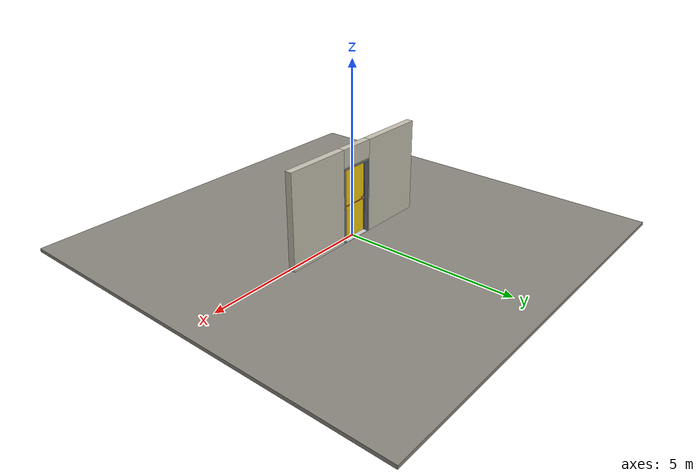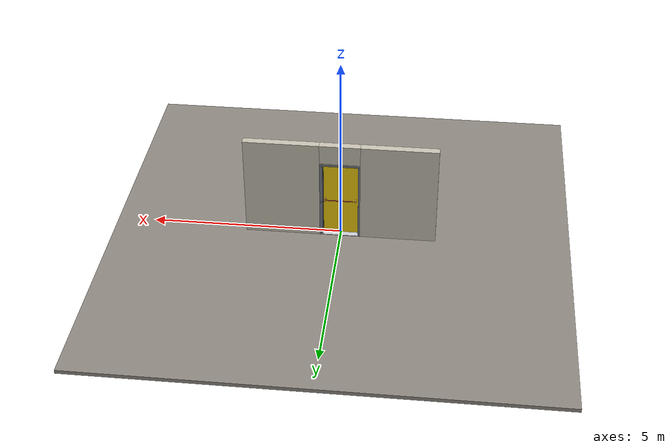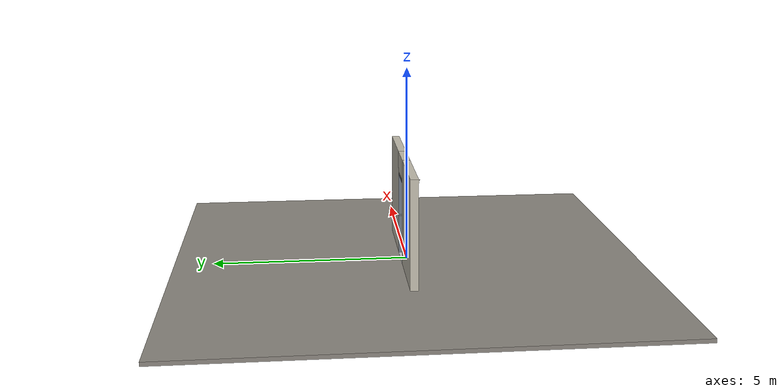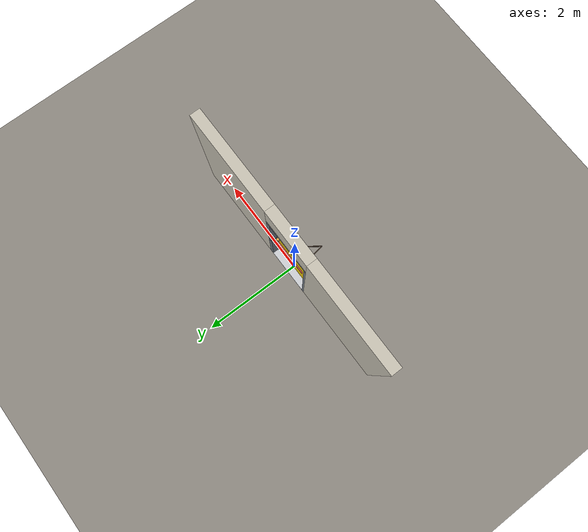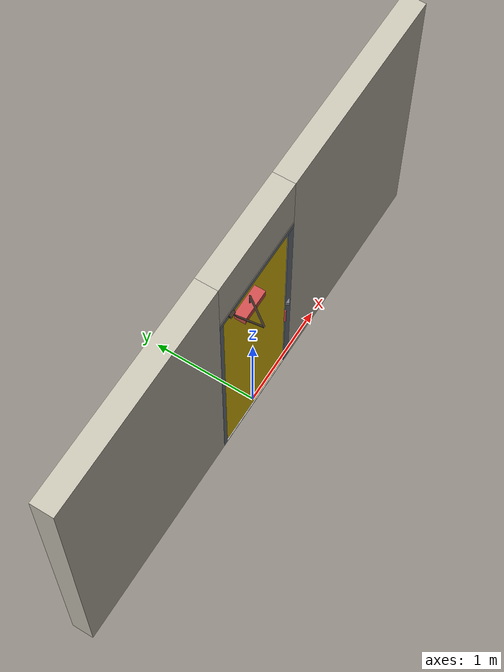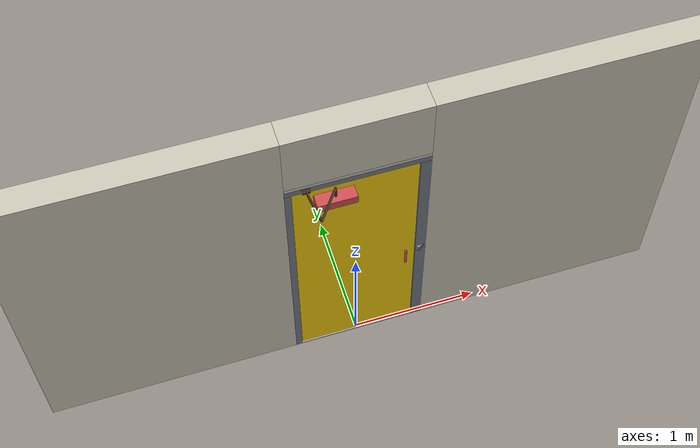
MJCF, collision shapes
<?xml version="1.0" ?>
<mujoco model="db0837_swing_single_full">
  <compiler angle="radian" meshdir="../../hardware" texturedir="../../textures" autolimits="true" inertiafromgeom="false"/>
  <option timestep="0.002" integrator="implicitfast" cone="elliptic" impratio="10" noslip_iterations="3">
    <flag multiccd="enable"/>
  </option>
  <size memory="16M"/>
  <default>
    <geom condim="4" solref="0.005 1" solimp="0.95 0.99 0.001"/>
    <joint solreflimit="0.005 1" solimplimit="0.95 0.99 0.001"/>
    <tendon solreflimit="0.005 1"/>
    <equality solref="0.002 1"/>
  </default>
  <visual>
    <headlight ambient="0.4 0.4 0.4" diffuse="0.7 0.7 0.7" specular="0.2 0.2 0.2"/>
    <quality shadowsize="4096"/>
    <map znear="0.01" zfar="60"/>
  </visual>
  <asset>
    <mesh name="closer_body_fdc4667657" file="closer_body_fdc4667657.obj"/>
    <mesh name="crossbar_a94ab98191" file="crossbar_a94ab98191.obj"/>
    <mesh name="exit_sign_a6449bfa2c" file="exit_sign_a6449bfa2c.obj"/>
    <mesh name="hinge_e22b26c0c1" file="hinge_e22b26c0c1.obj"/>
    <mesh name="hinge_jamb_e1d088f8dc" file="hinge_jamb_e1d088f8dc.obj"/>
    <mesh name="pull_1e5d69a91a" file="pull_1e5d69a91a.obj"/>
    <material name="mat_floor" rgba="0.55 0.53 0.5 1" specular="0.2" shininess="0.15" reflectance="0"/>
    <material name="mat_wall" rgba="0.78 0.76 0.7 1" specular="0.2" shininess="0.1" reflectance="0"/>
    <material name="mat_leaf" rgba="0.95 0.8 0.05 1" specular="0.23" shininess="0.6" reflectance="0.02"/>
    <material name="mat_hinge" rgba="0.65 0.66 0.68 1" specular="0.74" shininess="0.5" reflectance="0.36"/>
    <material name="mat_op_brass" rgba="0.85 0.66 0.3 1" specular="0.8" shininess="0.75" reflectance="0.4"/>
    <material name="mat_op_stainless" rgba="0.75 0.76 0.77 1" specular="0.8" shininess="0.65" reflectance="0.4"/>
    <material name="mat_bolt" rgba="0.75 0.76 0.77 1" specular="0.8" shininess="0.65" reflectance="0.4"/>
    <material name="mat_frame" rgba="0.45 0.48 0.52 1" specular="0.32" shininess="0.6" reflectance="0.08"/>
    <material name="mat_seal" rgba="0.1 0.1 0.1 1" specular="0.2" shininess="0.1" reflectance="0"/>
    <material name="mat_threshold" rgba="0.8 0.81 0.83 1" specular="0.8" shininess="0.6" reflectance="0.4"/>
    <material name="mat_closer" rgba="0.22 0.17 0.13 1" specular="0.8" shininess="0.6" reflectance="0.4"/>
    <material name="mat_exit_sign" rgba="0.85 0.1 0.1 1" specular="0.2" shininess="0.6" reflectance="0"/>
    <material name="mat_sign_bracket" rgba="0.8 0.81 0.83 1" specular="0.8" shininess="0.6" reflectance="0.4"/>
    <texture name="skybox" type="skybox" builtin="gradient" rgb1="0.6 0.7 0.85" rgb2="0.9 0.92 0.95" width="256" height="256"/>
  </asset>
  <worldbody>
    <light name="sun" pos="1.5 -2.5 4" dir="-0.3 0.5 -0.8" directional="true" diffuse="0.8 0.8 0.8" specular="0.3 0.3 0.3" castshadow="true"/>
    <light name="fill" pos="-1.5 2.5 3" dir="0.3 -0.5 -0.7" directional="true" diffuse="0.35 0.35 0.4" castshadow="false"/>
    <camera name="robot_view" pos="0 -2.566812 1.812087" xyaxes="1 0 0 0 0.26963 0.962964" fovy="52"/>
    <camera name="far_view" pos="0 2.708813 1.812087" xyaxes="-1 0 0 0 -0.26963 0.962964" fovy="52"/>
    <camera name="iso" pos="2.004737 -2.144762 2.234138" xyaxes="0.741536 0.670913 0 -0.242917 0.268487 0.932151" fovy="46"/>
    <camera name="detail_handle" pos="0.5465 -0.882 1.32" xyaxes="0.97561 0.219512 0 -0.070934 0.315262 0.94635" fovy="38"/>
    <geom name="floor" type="box" size="6 6 0.05" pos="0 0 -0.05" material="mat_floor" group="0" contype="1" conaffinity="1" friction="0.8 0.005 0.0001" density="2400"/>
    <geom name="wall_left" type="box" size="0.99475 0.1 1.3735" pos="-1.50525 0.071 1.3735" material="mat_wall" group="0" contype="1" conaffinity="1" friction="0.6 0.005 0.0001" density="800"/>
    <geom name="wall_right" type="box" size="0.97975 0.1 1.3735" pos="1.52025 0.071 1.3735" material="mat_wall" group="0" contype="1" conaffinity="1" friction="0.6 0.005 0.0001" density="800"/>
    <geom name="wall_header" type="box" size="0.5255 0.1 0.26" pos="0.015 0.071 2.487" material="mat_wall" group="0" contype="1" conaffinity="1" friction="0.6 0.005 0.0001" density="800"/>
    <geom name="hinge_0_jamb" type="mesh" mesh="hinge_jamb_e1d088f8dc" pos="-0.4575 -0.029 0.267" material="mat_hinge" group="1" contype="0" conaffinity="0" density="7850"/>
    <geom name="hinge_1_jamb" type="mesh" mesh="hinge_jamb_e1d088f8dc" pos="-0.4575 -0.029 0.832333" material="mat_hinge" group="1" contype="0" conaffinity="0" density="7850"/>
    <geom name="hinge_2_jamb" type="mesh" mesh="hinge_jamb_e1d088f8dc" pos="-0.4575 -0.029 1.397667" material="mat_hinge" group="1" contype="0" conaffinity="0" density="7850"/>
    <geom name="hinge_3_jamb" type="mesh" mesh="hinge_jamb_e1d088f8dc" pos="-0.4575 -0.029 1.963" material="mat_hinge" group="1" contype="0" conaffinity="0" density="7850"/>
    <geom name="jamb_hinge" type="box" size="0.025 0.1 1.0735" pos="-0.4855 0.071 1.0735" material="mat_frame" group="0" contype="1" conaffinity="1" friction="0.6 0.005 0.0001" density="300"/>
    <geom name="strike_1040_wall_n" type="box" size="0.04 0.08 0.02" pos="0.5005 0.091 1.04" material="mat_frame" group="0" contype="1" conaffinity="1" friction="0.6 0.005 0.0001" density="300"/>
    <geom name="strike_1040_wall_p" type="box" size="0.04 0.008 0.02" pos="0.5005 -0.019 1.04" material="mat_frame" group="0" contype="1" conaffinity="1" friction="0.6 0.005 0.0001" density="300"/>
    <geom name="strike_1040_ramp" type="box" size="0.04 0.018028 0.02" pos="0.503782 -0.019812 1.04" quat="0.957092 0 0 0.289784" material="mat_frame" group="0" contype="1" conaffinity="1" friction="0.12 0.005 0.0001" density="300"/>
    <geom name="strike_1040_back" type="box" size="0.0285 0.011 0.02" pos="0.512 0 1.04" material="mat_frame" group="0" contype="1" conaffinity="1" friction="0.6 0.005 0.0001" density="300"/>
    <geom name="jamb_strike_0" type="box" size="0.04 0.1 0.51" pos="0.5005 0.071 0.51" material="mat_frame" group="0" contype="1" conaffinity="1" friction="0.6 0.005 0.0001" density="300"/>
    <geom name="jamb_strike_1" type="box" size="0.04 0.1 0.5435" pos="0.5005 0.071 1.6035" material="mat_frame" group="0" contype="1" conaffinity="1" friction="0.6 0.005 0.0001" density="300"/>
    <geom name="jamb_head" type="box" size="0.5255 0.1 0.025" pos="0.015 0.071 2.172" material="mat_frame" group="0" contype="1" conaffinity="1" friction="0.6 0.005 0.0001" density="300"/>
    <geom name="head_stud" type="box" size="0.5255 0.1 0.015" pos="0.015 0.071 2.212" material="mat_wall" group="0" contype="1" conaffinity="1" friction="0.6 0.005 0.0001" density="500"/>
    <geom name="stop_hinge" type="box" size="0.0055 0.016 1.0735" pos="-0.455 0.0385 1.0735" material="mat_frame" group="0" contype="1" conaffinity="1" friction="0.6 0.005 0.0001" density="300"/>
    <geom name="stop_strike" type="box" size="0.0055 0.016 1.0735" pos="0.455 0.0385 1.0735" material="mat_frame" group="0" contype="1" conaffinity="1" friction="0.6 0.005 0.0001" density="300"/>
    <geom name="stop_head" type="box" size="0.4605 0.016 0.0055" pos="0 0.0385 2.1415" material="mat_frame" group="0" contype="1" conaffinity="1" friction="0.6 0.005 0.0001" density="300"/>
    <geom name="seal_hinge" type="box" size="0.004 0.0025 1.0735" pos="-0.4575 0.0245 1.0735" material="mat_seal" group="1" contype="0" conaffinity="0" density="1100"/>
    <geom name="seal_strike" type="box" size="0.004 0.0025 1.0735" pos="0.4575 0.0245 1.0735" material="mat_seal" group="1" contype="0" conaffinity="0" density="1100"/>
    <geom name="seal_head" type="box" size="0.4405 0.0025 0.008" pos="0 0.0245 2.135" material="mat_seal" group="1" contype="0" conaffinity="0" density="1100"/>
    <geom name="threshold" type="box" size="0.5105 0.1 0.0065" pos="0 0.071 0.0065" material="mat_threshold" group="0" contype="1" conaffinity="1" friction="0.5 0.005 0.0001" density="2700"/>
    <geom name="closer_bracket" type="box" size="0.03 0.012 0.014" pos="-0.3605 -0.041 2.177" material="mat_closer" group="1" contype="0" conaffinity="0" density="2700"/>
    <geom name="exit_sign" type="mesh" mesh="exit_sign_a6449bfa2c" pos="0 0.15 2.447" material="mat_exit_sign" group="2" contype="0" conaffinity="0" density="500"/>
    <geom name="exit_sign_bracket" type="box" size="0.05775 0.00875 0.0605" pos="0 0.15 2.287" material="mat_sign_bracket" group="2" contype="0" conaffinity="0" density="7850"/>
    <site name="approach_point" pos="0 -1.5 0" quat="1 0 0 0" size="0.05" rgba="0.2 0.9 0.2 0.5" group="4"/>
    <site name="goal_point" pos="0 1.5 0" quat="1 0 0 0" size="0.05" rgba="0.2 0.9 0.2 0.5" group="4"/>
    <site name="door_plane_center" pos="0 0 1.0735" quat="1 0 0 0" size="0.02" rgba="0.2 0.9 0.2 0.5" group="4"/>
    <body name="leaf" pos="-0.4605 0 0">
      <inertial pos="0.421526 -0.015841 1.296561" mass="56.436269" quat="-0.493778 0.470351 0.515396 0.518961" diaginertia="3.571239858 25.306260418 28.768282647"/>
      <joint name="leaf_hinge" type="hinge" axis="0 0 -1" pos="0.003 -0.029 0" limited="true" range="0 1.745329" solreflimit="0.02 1" damping="12.268966" frictionloss="3.266595" stiffness="12.254931" springref="-1.689116" armature="0.02"/>
      <geom name="leaf_slab" type="box" size="0.457 0.022 1.063" pos="0.46 0 1.08" material="mat_leaf" group="0" contype="1" conaffinity="1" friction="0.42 0.005 0.0001" density="1"/>
      <geom name="hinge_0" type="mesh" mesh="hinge_e22b26c0c1" pos="0.003 -0.029 0.267" material="mat_hinge" group="1" contype="0" conaffinity="0" density="7850"/>
      <geom name="hinge_1" type="mesh" mesh="hinge_e22b26c0c1" pos="0.003 -0.029 0.832333" material="mat_hinge" group="1" contype="0" conaffinity="0" density="7850"/>
      <geom name="hinge_2" type="mesh" mesh="hinge_e22b26c0c1" pos="0.003 -0.029 1.397667" material="mat_hinge" group="1" contype="0" conaffinity="0" density="7850"/>
      <geom name="hinge_3" type="mesh" mesh="hinge_e22b26c0c1" pos="0.003 -0.029 1.963" material="mat_hinge" group="1" contype="0" conaffinity="0" density="7850"/>
      <geom name="leaf_exit_device_case" type="box" size="0.022 0.033 0.045" pos="0.872 0.055 1.04" material="mat_op_brass" group="0" contype="1" conaffinity="1" friction="0.6 0.005 0.0001" density="3000"/>
      <geom name="leaf_exit_device_end_case" type="box" size="0.022 0.03 0.035" pos="0.0765 0.052 1.04" material="mat_op_brass" group="0" contype="1" conaffinity="1" friction="0.6 0.005 0.0001" density="3000"/>
      <geom name="leaf_far_pull_n" type="mesh" mesh="pull_1e5d69a91a" pos="0.827 -0.022 1.04" quat="0.707107 0.707107 0 0" material="mat_op_stainless" group="1" contype="0" conaffinity="0" density="3000"/>
      <geom name="leaf_far_pull_col_n" type="capsule" size="0.0095 0.08" pos="0.827 -0.082 1.04" material="mat_op_stainless" group="3" contype="1" conaffinity="1" rgba="0.8 0.3 0.3 0.25" friction="0.7 0.01 0.0001" density="3000"/>
      <geom name="closer_body" type="mesh" mesh="closer_body_fdc4667657" pos="0.3 -0.022 2.046" quat="0.707107 0.707107 0 0" material="mat_closer" group="1" contype="0" conaffinity="0" density="2000"/>
      <geom name="closer_body_col" type="box" size="0.145 0.05 0.035" pos="0.3 -0.072 2.046" material="mat_closer" group="3" contype="1" conaffinity="1" rgba="0.8 0.3 0.3 0.25" friction="0.6 0.005 0.0001" density="2000"/>
      <geom name="closer_pinion_shaft" type="cylinder" size="0.008 0.0655" pos="0.3 -0.072 2.1115" material="mat_closer" group="1" contype="0" conaffinity="0" density="2700"/>
      <site name="leaf_far_pull_grip_n" pos="0.827 -0.082 1.04" quat="1 0 0 0" size="0.012" rgba="0.2 0.9 0.2 0.5" group="4"/>
      <site name="leaf_edge_mid" pos="0.917 0 1.063" quat="1 0 0 0" size="0.02" rgba="0.2 0.9 0.2 0.5" group="4"/>
      <body name="leaf_exit_device" pos="0.47425 0.022 1.04">
        <inertial pos="0 0.05794 0" mass="2.212541" quat="1 0 0 0" diaginertia="0.000361182 0.103984907 0.10418157"/>
        <joint name="leaf_exit_device_hinge" type="hinge" axis="1 0 0" limited="true" range="0 0.35" damping="0.924048" frictionloss="0.14" stiffness="12" springref="-0.333333" armature="0.01"/>
        <geom name="leaf_exit_device_mesh" type="mesh" mesh="crossbar_a94ab98191" pos="0 0 0" quat="-0.707107 0.707107 0 0" material="mat_op_brass" group="1" contype="0" conaffinity="0" density="3000"/>
        <geom name="leaf_exit_device_col" type="capsule" size="0.0125 0.34275" pos="0 0.06 0" quat="0.707107 0 0.707107 0" material="mat_op_brass" group="3" contype="1" conaffinity="1" rgba="0.8 0.3 0.3 0.25" friction="0.7 0.01 0.0001" density="3000"/>
        <site name="leaf_exit_device_push" pos="0 0.06 0" quat="1 0 0 0" size="0.015" rgba="0.2 0.9 0.2 0.5" group="4"/>
      </body>
      <body name="leaf_latch_bolt" pos="0.917 0 1.04">
        <inertial pos="-0.0055 0 0" mass="0.102826" quat="0.92388 -0.382683 0 0" diaginertia="0.000004365 0.000018287 0.000018287"/>
        <joint name="leaf_latch_bolt_slide" type="slide" axis="-1 0 0" limited="true" range="0 0.019" damping="2" frictionloss="0.3" stiffness="800" springref="-0.01" armature="0.1"/>
        <geom name="leaf_latch_bolt_capsule" type="capsule" size="0.0095 0.015" pos="-0.0055 0 0" quat="0.707107 0 0.707107 0" material="mat_bolt" group="0" contype="1" conaffinity="1" friction="0.2 0.005 0.0001" density="8500"/>
      </body>
      <body name="closer_arm_main" pos="0.3 -0.072 2.177" quat="0.454107 0 0 -0.890947">
        <inertial pos="0.14 0 0" mass="0.12096" quat="1 0 0 0" diaginertia="0.000003588 0.00079128 0.000792852"/>
        <joint name="closer_pinion" type="hinge" axis="0 0 1" limited="false" damping="0.01" armature="0.002"/>
        <geom name="closer_arm_main_geom" type="box" size="0.14 0.008 0.005" pos="0.14 0 0" material="mat_closer" group="1" contype="0" conaffinity="0" density="2700"/>
        <body name="closer_arm_fore" pos="0.28 0 0" quat="-0.373215 0 0 0.927745">
          <inertial pos="0.128088 0 0" mass="0.076531" quat="1 0 0 0" diaginertia="0.000001771 0.000437665 0.000438201"/>
          <joint name="closer_elbow" type="hinge" axis="0 0 1" limited="false" damping="0.01" armature="0.002"/>
          <geom name="closer_arm_fore_geom" type="box" size="0.1125 0.007 0.004" pos="0.1125 0 0" material="mat_closer" group="1" contype="0" conaffinity="0" density="2700"/>
          <geom name="closer_fore_neck" type="box" size="0.0175 0.003 0.003" pos="0.2425 0 0" material="mat_closer" group="1" contype="0" conaffinity="0" density="2700"/>
          <geom name="closer_fore_pivot" type="cylinder" size="0.005 0.012" pos="0.26 0 0" material="mat_closer" group="1" contype="0" conaffinity="0" density="2700"/>
        </body>
      </body>
    </body>
  </worldbody>
  <tendon>
    <fixed name="leaf_latch_bolt_coupling" limited="true" range="0 10">
      <joint joint="leaf_latch_bolt_slide" coef="1"/>
      <joint joint="leaf_exit_device_hinge" coef="-0.059375"/>
    </fixed>
  </tendon>
  <equality>
    <connect name="closer_arm_connect" body1="closer_arm_fore" body2="world" anchor="0.26 0 0" active="true"/>
  </equality>
  <contact>
    <exclude body1="closer_arm_main" body2="leaf"/>
    <exclude body1="closer_arm_fore" body2="leaf"/>
    <exclude body1="closer_arm_main" body2="closer_arm_fore"/>
  </contact>
  <sensor>
    <jointpos name="leaf_hinge_pos" joint="leaf_hinge"/>
    <jointvel name="leaf_hinge_vel" joint="leaf_hinge"/>
    <jointpos name="leaf_exit_device_hinge_pos" joint="leaf_exit_device_hinge"/>
    <jointvel name="leaf_exit_device_hinge_vel" joint="leaf_exit_device_hinge"/>
    <jointpos name="leaf_latch_bolt_slide_pos" joint="leaf_latch_bolt_slide"/>
    <jointvel name="leaf_latch_bolt_slide_vel" joint="leaf_latch_bolt_slide"/>
  </sensor>
</mujoco>
